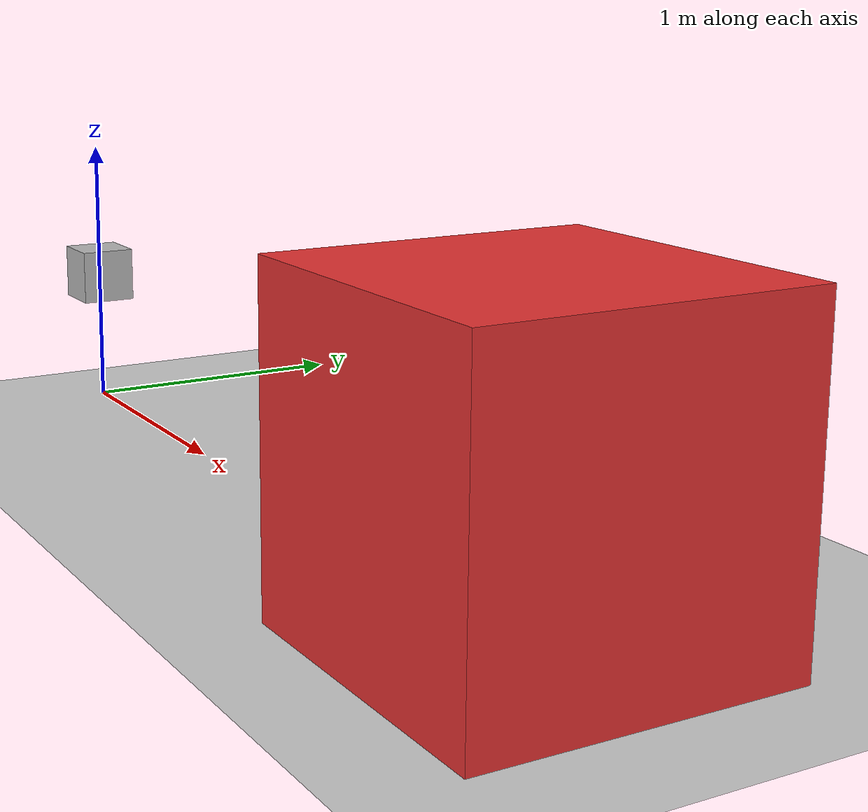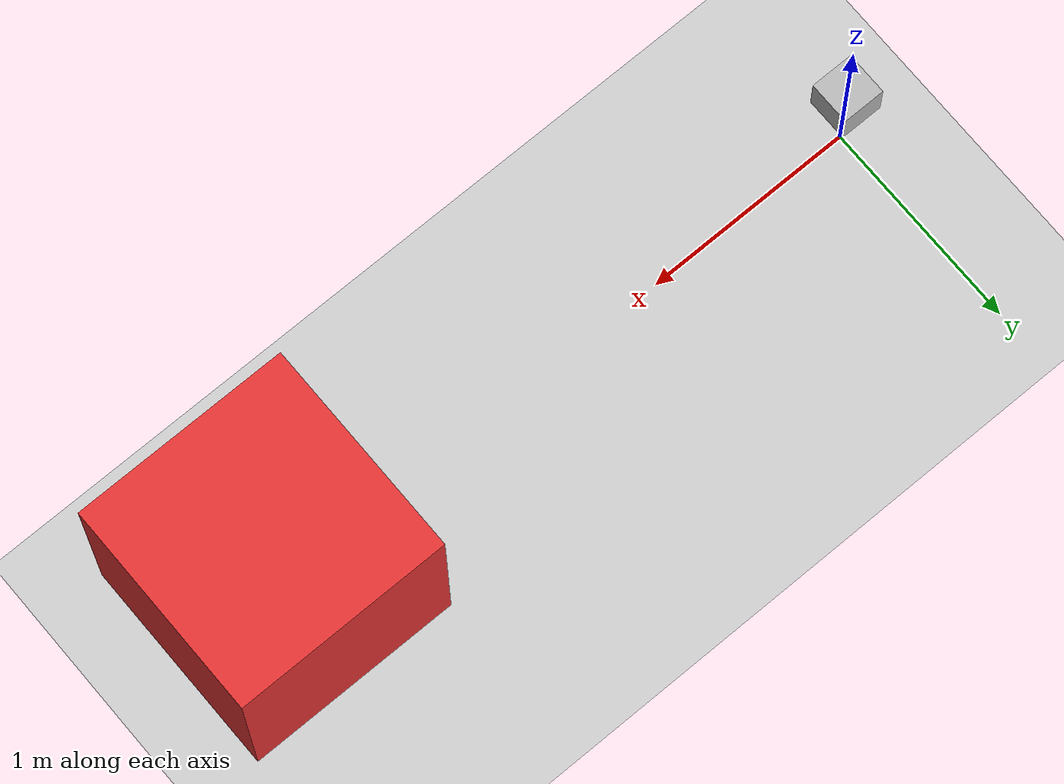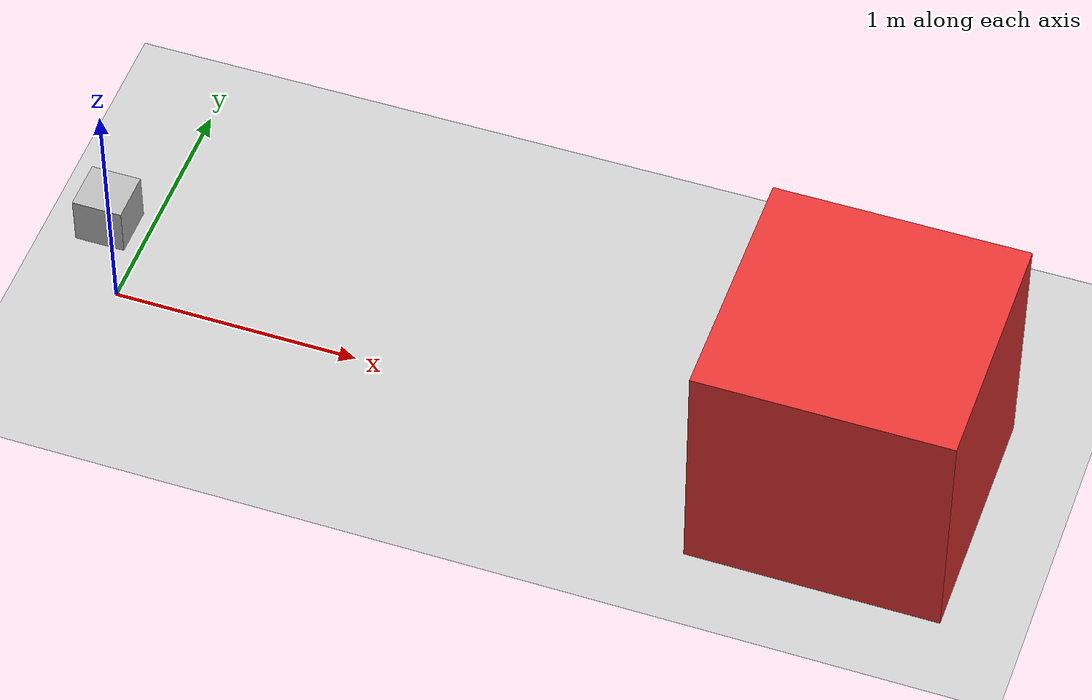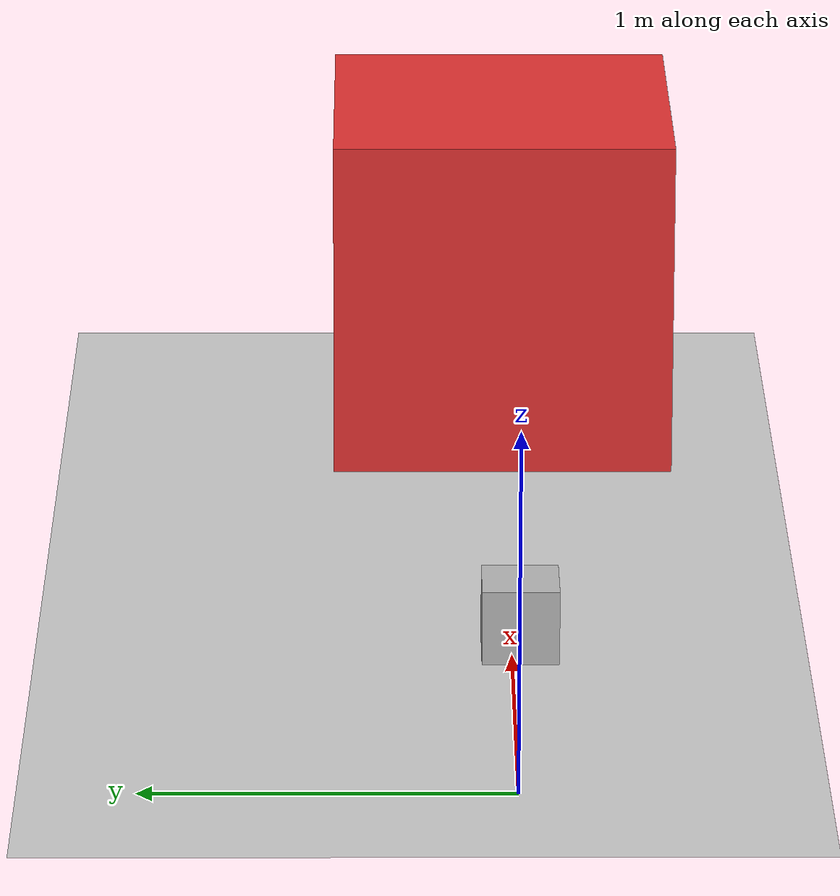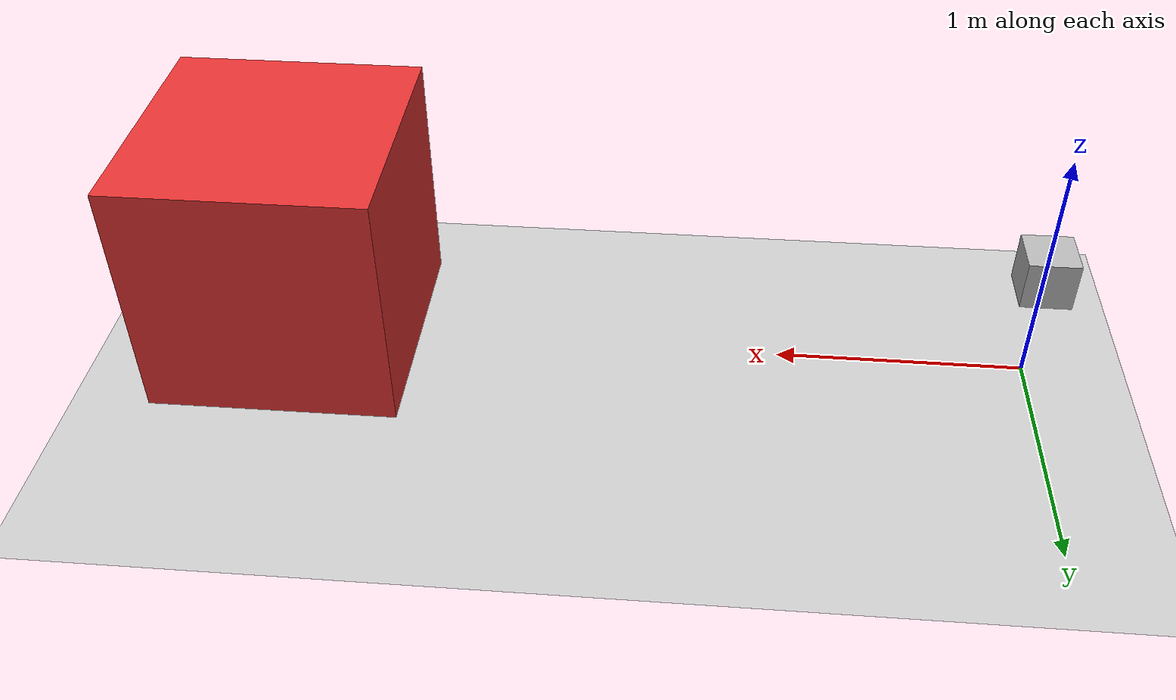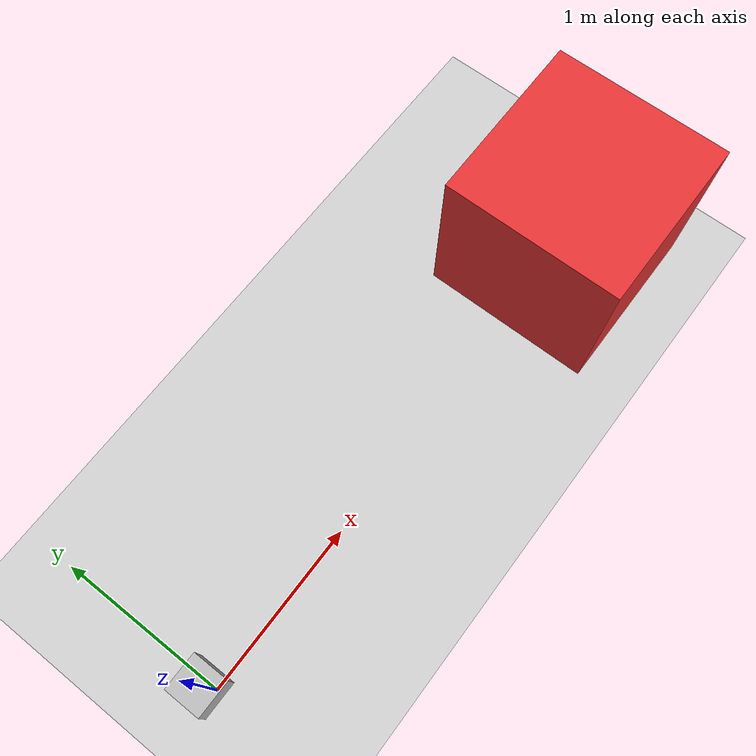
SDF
<?xml version="1.0" ?>
<sdf version="1.9">
  <world name="render_check">

    <physics name="1ms" type="ignored">
      <max_step_size>0.001</max_step_size>
      <real_time_factor>1.0</real_time_factor>
    </physics>

    <plugin filename="gz-sim-physics-system"
            name="gz::sim::systems::Physics"/>
    <plugin filename="gz-sim-user-commands-system"
            name="gz::sim::systems::UserCommands"/>
    <plugin filename="gz-sim-scene-broadcaster-system"
            name="gz::sim::systems::SceneBroadcaster"/>
    <!-- This is the system that instantiates the render engine. Without it the
         camera and lidar below are inert and nothing is proven. -->
    <plugin filename="gz-sim-sensors-system"
            name="gz::sim::systems::Sensors">
      <render_engine>ogre2</render_engine>
    </plugin>

    <light type="directional" name="sun">
      <cast_shadows>true</cast_shadows>
      <pose>0 0 10 0 0 0</pose>
      <diffuse>0.8 0.8 0.8 1</diffuse>
      <specular>0.2 0.2 0.2 1</specular>
      <direction>-0.5 0.1 -0.9</direction>
    </light>

    <model name="ground_plane">
      <static>true</static>
      <link name="link">
        <collision name="collision">
          <geometry><plane><normal>0 0 1</normal><size>50 50</size></plane></geometry>
        </collision>
        <visual name="visual">
          <geometry><plane><normal>0 0 1</normal><size>50 50</size></plane></geometry>
          <material>
            <ambient>0.8 0.8 0.8 1</ambient>
            <diffuse>0.8 0.8 0.8 1</diffuse>
          </material>
        </visual>
      </link>
    </model>

    <!-- Something for the sensors to actually see. -->
    <model name="target_box">
      <pose>3 0 0.5 0 0 0</pose>
      <link name="link">
        <collision name="collision">
          <geometry><box><size>1 1 1</size></box></geometry>
        </collision>
        <visual name="visual">
          <geometry><box><size>1 1 1</size></box></geometry>
          <material>
            <ambient>0.9 0.2 0.2 1</ambient>
            <diffuse>0.9 0.2 0.2 1</diffuse>
          </material>
        </visual>
      </link>
    </model>

    <model name="sensor_rig">
      <static>true</static>
      <pose>0 0 0.5 0 0 0</pose>
      <link name="link">
        <visual name="visual">
          <geometry><box><size>0.2 0.2 0.2</size></box></geometry>
        </visual>

        <sensor name="camera" type="camera">
          <always_on>1</always_on>
          <update_rate>30</update_rate>
          <topic>render_check/camera</topic>
          <camera>
            <horizontal_fov>1.047</horizontal_fov>
            <image><width>640</width><height>480</height></image>
            <clip><near>0.1</near><far>100</far></clip>
          </camera>
        </sensor>

        <sensor name="gpu_lidar" type="gpu_lidar">
          <always_on>1</always_on>
          <update_rate>10</update_rate>
          <topic>render_check/scan</topic>
          <lidar>
            <scan>
              <horizontal>
                <samples>640</samples>
                <resolution>1</resolution>
                <min_angle>-1.57</min_angle>
                <max_angle>1.57</max_angle>
              </horizontal>
            </scan>
            <range><min>0.1</min><max>30.0</max><resolution>0.01</resolution></range>
          </lidar>
        </sensor>
      </link>
    </model>

  </world>
</sdf>
